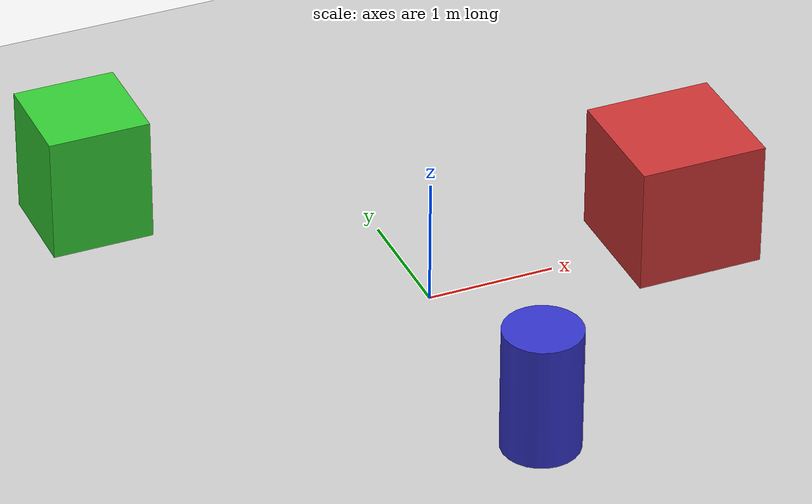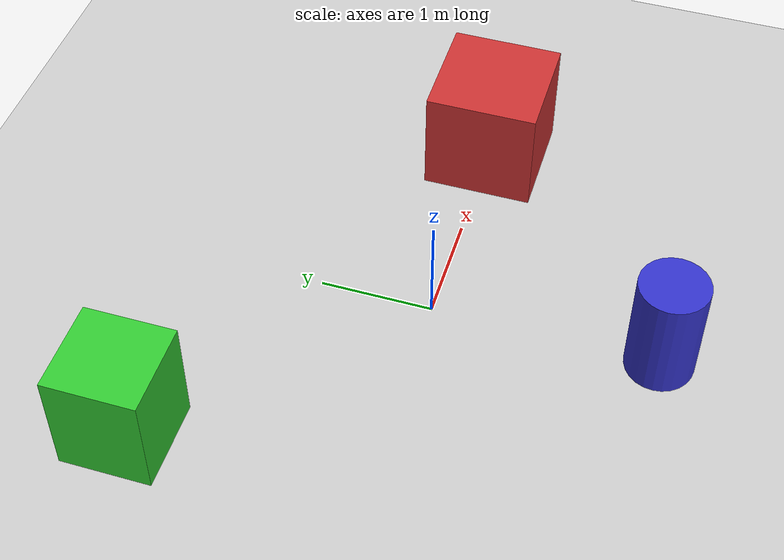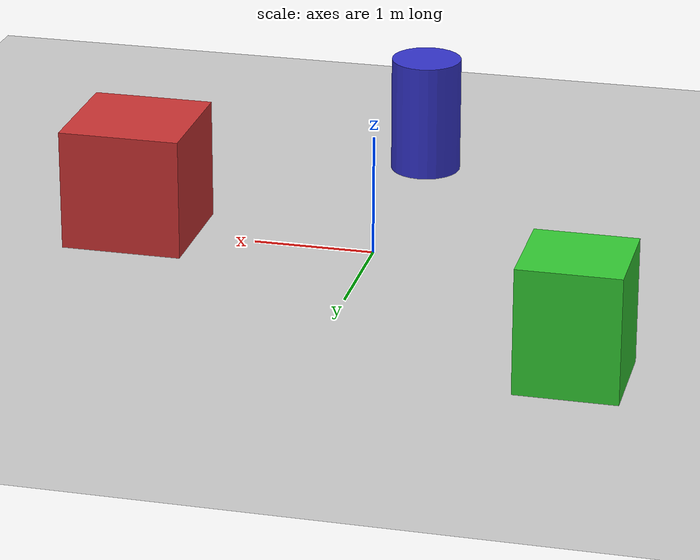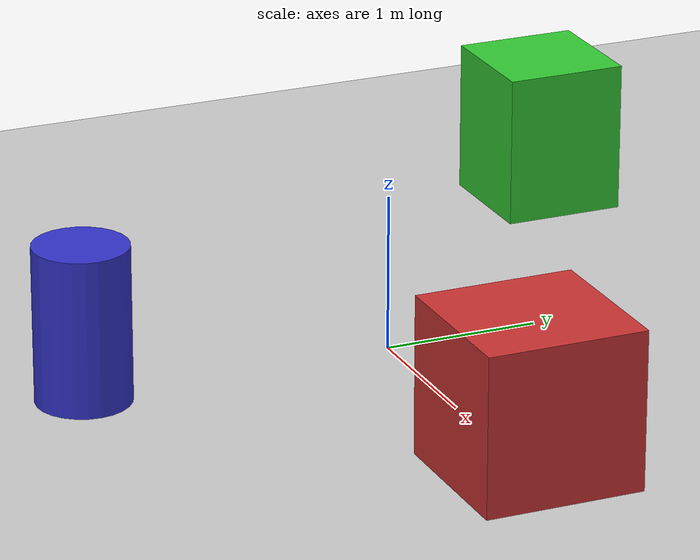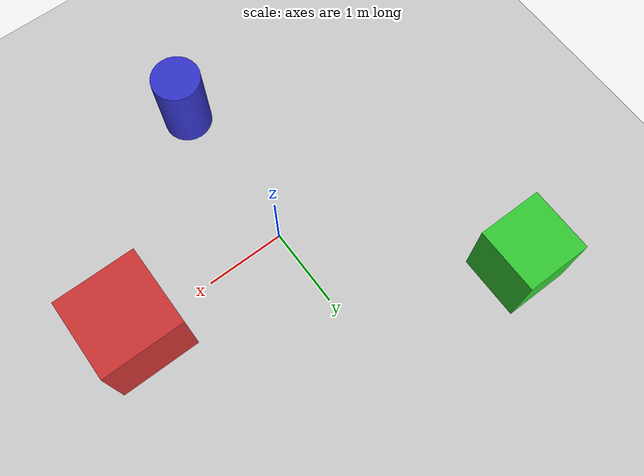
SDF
<?xml version="1.0" ?>
<sdf version="1.6">
  <world name="robosort_simple">

    <!-- Physics Settings -->
    <physics type="ode">
      <real_time_update_rate>1000.0</real_time_update_rate>
      <max_step_size>0.001</max_step_size>
      <real_time_factor>1</real_time_factor>
    </physics>

    <!-- Sun Light -->
    <include>
      <uri>model://sun</uri>
    </include>

    <!-- Ground Plane -->
    <include>
      <uri>model://ground_plane</uri>
    </include>

    <!-- Simple Box Obstacles for Testing -->
    <model name="box_1">
      <static>true</static>
      <pose>2 0 0.5 0 0 0</pose>
      <link name="box_link">
        <collision name="box_collision">
          <geometry><box><size>1 1 1</size></box></geometry>
        </collision>
        <visual name="box_visual">
          <geometry><box><size>1 1 1</size></box></geometry>
          <material><ambient>0.8 0.2 0.2 1</ambient></material>
        </visual>
      </link>
    </model>

    <model name="box_2">
      <static>true</static>
      <pose>-2 2 0.5 0 0 0</pose>
      <link name="box_link">
        <collision name="box_collision">
          <geometry><box><size>0.8 0.8 1</size></box></geometry>
        </collision>
        <visual name="box_visual">
          <geometry><box><size>0.8 0.8 1</size></box></geometry>
          <material><ambient>0.2 0.8 0.2 1</ambient></material>
        </visual>
      </link>
    </model>

    <model name="cylinder_1">
      <static>true</static>
      <pose>0 -2 0.5 0 0 0</pose>
      <link name="cylinder_link">
        <collision name="cylinder_collision">
          <geometry><cylinder><radius>0.3</radius><length>1.0</length></cylinder></geometry>
        </collision>
        <visual name="cylinder_visual">
          <geometry><cylinder><radius>0.3</radius><length>1.0</length></cylinder></geometry>
          <material><ambient>0.2 0.2 0.8 1</ambient></material>
        </visual>
      </link>
    </model>

    <!-- Scene Configuration -->
    <scene>
      <ambient>0.4 0.4 0.4 1</ambient>
      <background>0.7 0.7 0.7 1</background>
      <shadows>1</shadows>
    </scene>

    <!-- GUI Settings -->
    <gui fullscreen='0'>
      <camera name='user_camera'>
        <pose>-5 -5 5 0 0.5 0.785</pose>
        <view_controller>orbit</view_controller>
      </camera>
    </gui>

  </world>
</sdf>
